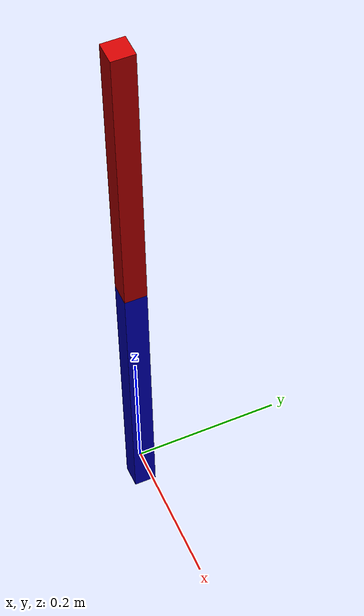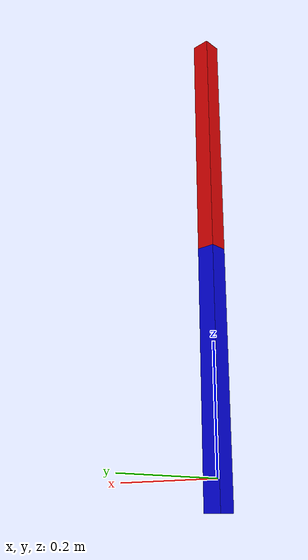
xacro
<robot name="acrobot" xmlns:xacro="http://www.ros.org/wiki/xacro">

    <xacro:property name="JOINT_FRICTION" value="0.05"/>
    <xacro:property name="JOINT_DAMPING" value="0.02"/>
    <xacro:property name="MOTOR_TORQUE" value="0.22"/>
    <xacro:property name="MOTOR_VELOCITY" value="1.8"/>
    <xacro:property name="PI" value="3.1415928"/>

    <xacro:property name="LEG_MASS"     value="3.2"/>
    <xacro:property name="LENGTH"       value="0.4"/>
    <xacro:property name="WIDTH"        value="0.03"/>
    <xacro:property name="HEIGHT"       value="0.03"/>

    <link name="base_link" />

    <link name="leg1">
        <inertial>
            <mass value="${LEG_MASS}"/>
            <origin rpy="0 0 0" xyz="${LENGTH/2} 0 0"/>
            <inertia ixx="${1/12*LEG_MASS * (WIDTH*WIDTH + HEIGHT*HEIGHT)}" ixy="0.0" ixz="0.0"
                     iyy="${1/12*LEG_MASS * (LENGTH*LENGTH + WIDTH*WIDTH)}" iyz="0.0"
                     izz="${1/12*LEG_MASS * (LENGTH*LENGTH + HEIGHT*HEIGHT)}"/>
        </inertial>
        <visual name="visual">
            <origin rpy="0 0 0" xyz="${LENGTH/2} 0 0"/>
            <geometry>
                <box size="${LENGTH} ${WIDTH} ${HEIGHT}" />
            </geometry>
            <material name="blue">
                <color rgba="0 0 0.8 1"/>
            </material>
        </visual>
    </link>

    <link name="leg2">
        <inertial>
            <mass value="${LEG_MASS}"/>
            <origin rpy="0 0 0" xyz="${-LENGTH/2} 0 0"/>
            <inertia ixx="${1/12*LEG_MASS * (WIDTH*WIDTH + HEIGHT*HEIGHT)}" ixy="0.0" ixz="0.0"
                     iyy="${1/12*LEG_MASS * (LENGTH*LENGTH + WIDTH*WIDTH)}" iyz="0.0"
                     izz="${1/12*LEG_MASS * (LENGTH*LENGTH + HEIGHT*HEIGHT)}"/>
        </inertial>
        <visual name="visual">
            <origin rpy="0 0 0" xyz="${-LENGTH/2} 0 0"/>
            <geometry>
                <box size="${LENGTH} ${WIDTH} ${HEIGHT}" />
            </geometry>
            <material name="red">
                <color rgba="0.8 0 0 1"/>
            </material>
        </visual>
    </link>

    <joint name="base_link" type="fixed">
        <parent link="base_link"/>
        <child link="leg1"/>
        <origin rpy="0 ${PI/2} 0" xyz="0 0 0.354"/>
    </joint>

    <joint name="joint" type="revolute">
        <parent link="leg1"/>
        <child link="leg2"/>
        <origin rpy="0 0 0" xyz="0 0 0"/>
        <axis xyz="0 1 0"/>
        <dynamics damping="${JOINT_DAMPING}" friction="${JOINT_FRICTION}" />
        <limit effort="${MOTOR_TORQUE}" lower="-${PI*98/100}" upper="${PI*98/100}" velocity="${MOTOR_VELOCITY}"/>
    </joint>

</robot>
